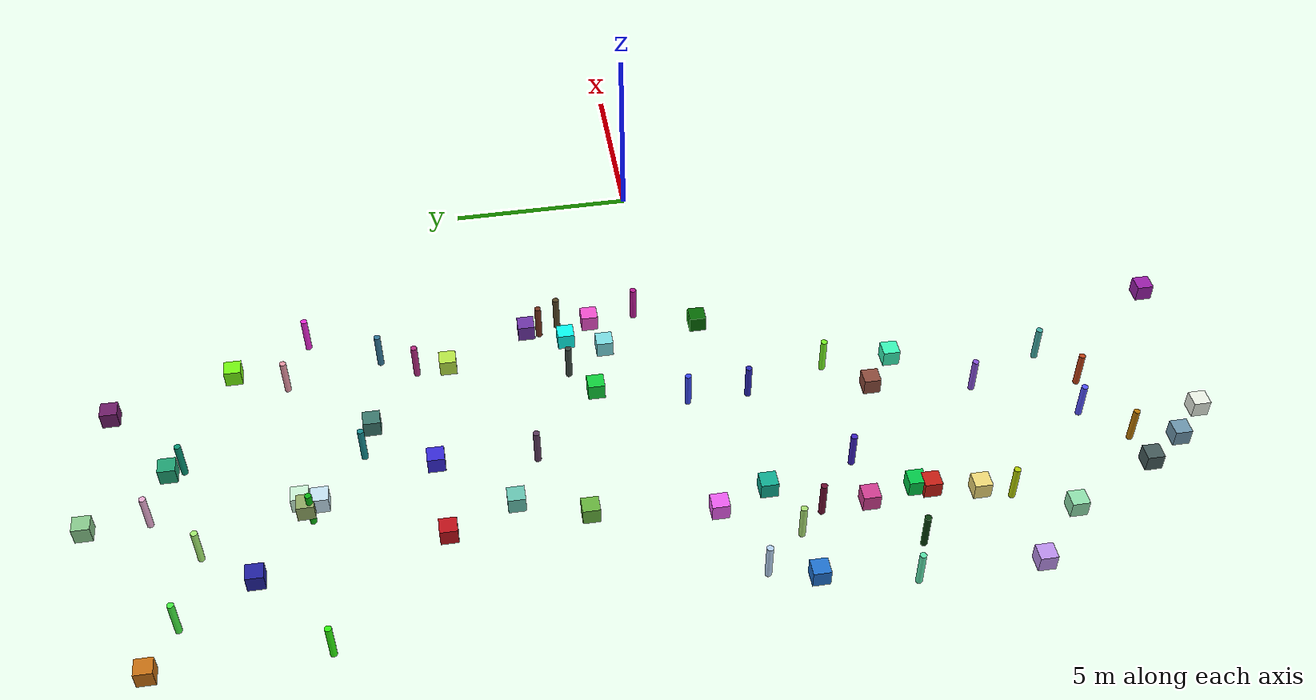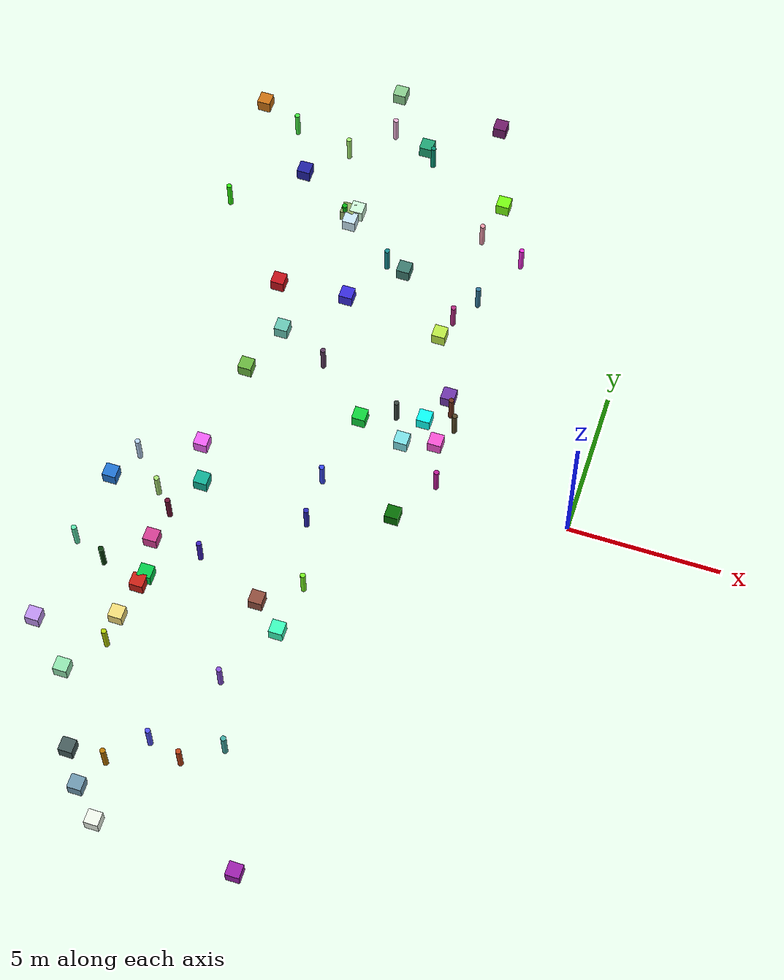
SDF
<sdf version="1.7">
 <world name="warehouse">
  <model name="ground_plane">
   <static>true</static>
   <link name="link">
    <collision name="collision">
     <geometry><plane><normal>0.0 0.0 1</normal><size>1 1</size></plane></geometry>
    </collision>
   </link>
  </model>
  <model name="unit_box_1">
   <static>true</static>
   <pose>-9.45 6.24 0 0 0 0</pose>
   <link name="link">
    <collision name="collision">
     <geometry><box><size>0.450000 0.450000 0.450000</size></box></geometry>
    </collision>
    <visual name="visual">
     <geometry><box><size>0.450000 0.450000 0.450000</size></box></geometry>
     <material>
      <ambient>0.22018970672033 0.168669181390797 0.8557216432038262 1</ambient>
      <diffuse>0.22018970672033 0.168669181390797 0.8557216432038262 1</diffuse>
      <script><uri>file://media/materials/scripts/gazebo.material</uri><name>Gazebo/RandomColor1</name></script>
     </material>
    </visual>
   </link>
  </model>
  <model name="unit_cylinder_1">
   <static>true</static>
   <pose>-4.3 9.48 0 0 0 0</pose>
   <link name="link">
    <collision name="collision">
     <geometry><cylinder><radius>0.085000</radius><length>1.000000</length></cylinder></geometry>
    </collision>
    <visual name="visual">
     <geometry><cylinder><radius>0.085000</radius><length>1.000000</length></cylinder></geometry>
     <material>
      <ambient>0.9275289806916635 0.16235170054518033 0.8495910540043754 1</ambient>
      <diffuse>0.9275289806916635 0.16235170054518033 0.8495910540043754 1</diffuse>
      <script><uri>file://media/materials/scripts/gazebo.material</uri><name>Gazebo/RandomColor1</name></script>
     </material>
    </visual>
   </link>
  </model>
  <model name="unit_box_2">
   <static>true</static>
   <pose>-7.58 -6.17 0 0 0 0</pose>
   <link name="link">
    <collision name="collision">
     <geometry><box><size>0.450000 0.450000 0.450000</size></box></geometry>
    </collision>
    <visual name="visual">
     <geometry><box><size>0.450000 0.450000 0.450000</size></box></geometry>
     <material>
      <ambient>0.2312825415340426 0.9723109525071806 0.7312117675803362 1</ambient>
      <diffuse>0.2312825415340426 0.9723109525071806 0.7312117675803362 1</diffuse>
      <script><uri>file://media/materials/scripts/gazebo.material</uri><name>Gazebo/RandomColor2</name></script>
     </material>
    </visual>
   </link>
  </model>
  <model name="unit_box_6">
   <static>true</static>
   <pose>-14.93 -8.04 0 0 0 0</pose>
   <link name="link">
    <collision name="collision">
     <geometry><box><size>0.450000 0.450000 0.450000</size></box></geometry>
    </collision>
    <visual name="visual">
     <geometry><box><size>0.450000 0.450000 0.450000</size></box></geometry>
     <material>
      <ambient>0.7430324248041168 0.5738740492089994 0.9353396482725254 1</ambient>
      <diffuse>0.7430324248041168 0.5738740492089994 0.9353396482725254 1</diffuse>
      <script><uri>file://media/materials/scripts/gazebo.material</uri><name>Gazebo/RandomColor6</name></script>
     </material>
    </visual>
   </link>
  </model>
  <model name="unit_box_8">
   <static>true</static>
   <pose>-11.6 -12.82 0 0 0 0</pose>
   <link name="link">
    <collision name="collision">
     <geometry><box><size>0.450000 0.450000 0.450000</size></box></geometry>
    </collision>
    <visual name="visual">
     <geometry><box><size>0.450000 0.450000 0.450000</size></box></geometry>
     <material>
      <ambient>0.43343318827009225 0.5937559258900776 0.6828403868105664 1</ambient>
      <diffuse>0.43343318827009225 0.5937559258900776 0.6828403868105664 1</diffuse>
      <script><uri>file://media/materials/scripts/gazebo.material</uri><name>Gazebo/RandomColor8</name></script>
     </material>
    </visual>
   </link>
  </model>
  <model name="unit_box_11">
   <static>true</static>
   <pose>-12.15 -5.6 0 0 0 0</pose>
   <link name="link">
    <collision name="collision">
     <geometry><box><size>0.450000 0.450000 0.450000</size></box></geometry>
    </collision>
    <visual name="visual">
     <geometry><box><size>0.450000 0.450000 0.450000</size></box></geometry>
     <material>
      <ambient>0.009686847005365151 0.7958886425692635 0.28912136334541993 1</ambient>
      <diffuse>0.009686847005365151 0.7958886425692635 0.28912136334541993 1</diffuse>
      <script><uri>file://media/materials/scripts/gazebo.material</uri><name>Gazebo/RandomColor11</name></script>
     </material>
    </visual>
   </link>
  </model>
  <model name="unit_cylinder_12">
   <static>true</static>
   <pose>-5.85 10.04 0 0 0 0</pose>
   <link name="link">
    <collision name="collision">
     <geometry><cylinder><radius>0.085000</radius><length>1.000000</length></cylinder></geometry>
    </collision>
    <visual name="visual">
     <geometry><cylinder><radius>0.085000</radius><length>1.000000</length></cylinder></geometry>
     <material>
      <ambient>0.9099793979901629 0.5892522467727745 0.6506620106365731 1</ambient>
      <diffuse>0.9099793979901629 0.5892522467727745 0.6506620106365731 1</diffuse>
      <script><uri>file://media/materials/scripts/gazebo.material</uri><name>Gazebo/RandomColor12</name></script>
     </material>
    </visual>
   </link>
  </model>
  <model name="unit_box_13">
   <static>true</static>
   <pose>-12.5 -7.19 0 0 0 0</pose>
   <link name="link">
    <collision name="collision">
     <geometry><box><size>0.450000 0.450000 0.450000</size></box></geometry>
    </collision>
    <visual name="visual">
     <geometry><box><size>0.450000 0.450000 0.450000</size></box></geometry>
     <material>
      <ambient>0.9443924591899964 0.8581053386519131 0.4730509594195955 1</ambient>
      <diffuse>0.9443924591899964 0.8581053386519131 0.4730509594195955 1</diffuse>
      <script><uri>file://media/materials/scripts/gazebo.material</uri><name>Gazebo/RandomColor13</name></script>
     </material>
    </visual>
   </link>
  </model>
  <model name="unit_cylinder_13">
   <static>true</static>
   <pose>-4.82 3.12 0 0 0 0</pose>
   <link name="link">
    <collision name="collision">
     <geometry><cylinder><radius>0.085000</radius><length>1.000000</length></cylinder></geometry>
    </collision>
    <visual name="visual">
     <geometry><cylinder><radius>0.085000</radius><length>1.000000</length></cylinder></geometry>
     <material>
      <ambient>0.44348084139480304 0.1950857366091988 0.1112470507666955 1</ambient>
      <diffuse>0.44348084139480304 0.1950857366091988 0.1112470507666955 1</diffuse>
      <script><uri>file://media/materials/scripts/gazebo.material</uri><name>Gazebo/RandomColor13</name></script>
     </material>
    </visual>
   </link>
  </model>
  <model name="unit_box_15">
   <static>true</static>
   <pose>-11.63 -1.93 0 0 0 0</pose>
   <link name="link">
    <collision name="collision">
     <geometry><box><size>0.450000 0.450000 0.450000</size></box></geometry>
    </collision>
    <visual name="visual">
     <geometry><box><size>0.450000 0.450000 0.450000</size></box></geometry>
     <material>
      <ambient>0.06534427168459656 0.6835050197864069 0.5798323271976961 1</ambient>
      <diffuse>0.06534427168459656 0.6835050197864069 0.5798323271976961 1</diffuse>
      <script><uri>file://media/materials/scripts/gazebo.material</uri><name>Gazebo/RandomColor15</name></script>
     </material>
    </visual>
   </link>
  </model>
  <model name="unit_cylinder_15">
   <static>true</static>
   <pose>-8.75 -8.18 0 0 0 0</pose>
   <link name="link">
    <collision name="collision">
     <geometry><cylinder><radius>0.085000</radius><length>1.000000</length></cylinder></geometry>
    </collision>
    <visual name="visual">
     <geometry><cylinder><radius>0.085000</radius><length>1.000000</length></cylinder></geometry>
     <material>
      <ambient>0.530437266507116 0.3187241931810576 0.8595011456076574 1</ambient>
      <diffuse>0.530437266507116 0.3187241931810576 0.8595011456076574 1</diffuse>
      <script><uri>file://media/materials/scripts/gazebo.material</uri><name>Gazebo/RandomColor15</name></script>
     </material>
    </visual>
   </link>
  </model>
  <model name="unit_box_16">
   <static>true</static>
   <pose>-11.82 6.08 0 0 0 0</pose>
   <link name="link">
    <collision name="collision">
     <geometry><box><size>0.450000 0.450000 0.450000</size></box></geometry>
    </collision>
    <visual name="visual">
     <geometry><box><size>0.450000 0.450000 0.450000</size></box></geometry>
     <material>
      <ambient>0.7576021204140397 0.06908343477428247 0.1029401630925113 1</ambient>
      <diffuse>0.7576021204140397 0.06908343477428247 0.1029401630925113 1</diffuse>
      <script><uri>file://media/materials/scripts/gazebo.material</uri><name>Gazebo/RandomColor16</name></script>
     </material>
    </visual>
   </link>
  </model>
  <model name="unit_box_17">
   <static>true</static>
   <pose>-10.33 14.91 0 0 0 0</pose>
   <link name="link">
    <collision name="collision">
     <geometry><box><size>0.450000 0.450000 0.450000</size></box></geometry>
    </collision>
    <visual name="visual">
     <geometry><box><size>0.450000 0.450000 0.450000</size></box></geometry>
     <material>
      <ambient>0.5380822836888527 0.7951779781985044 0.5547439271741642 1</ambient>
      <diffuse>0.5380822836888527 0.7951779781985044 0.5547439271741642 1</diffuse>
      <script><uri>file://media/materials/scripts/gazebo.material</uri><name>Gazebo/RandomColor17</name></script>
     </material>
    </visual>
   </link>
  </model>
  <model name="unit_box_22">
   <static>true</static>
   <pose>-11.73 2.57 0 0 0 0</pose>
   <link name="link">
    <collision name="collision">
     <geometry><box><size>0.450000 0.450000 0.450000</size></box></geometry>
    </collision>
    <visual name="visual">
     <geometry><box><size>0.450000 0.450000 0.450000</size></box></geometry>
     <material>
      <ambient>0.41077580032912864 0.7096107871756682 0.2456619725342214 1</ambient>
      <diffuse>0.41077580032912864 0.7096107871756682 0.2456619725342214 1</diffuse>
      <script><uri>file://media/materials/scripts/gazebo.material</uri><name>Gazebo/RandomColor22</name></script>
     </material>
    </visual>
   </link>
  </model>
  <model name="unit_cylinder_23">
   <static>true</static>
   <pose>-8.42 12.65 0 0 0 0</pose>
   <link name="link">
    <collision name="collision">
     <geometry><cylinder><radius>0.085000</radius><length>1.000000</length></cylinder></geometry>
    </collision>
    <visual name="visual">
     <geometry><cylinder><radius>0.085000</radius><length>1.000000</length></cylinder></geometry>
     <material>
      <ambient>0.023712384570412137 0.5786982690521715 0.4533886815752537 1</ambient>
      <diffuse>0.023712384570412137 0.5786982690521715 0.4533886815752537 1</diffuse>
      <script><uri>file://media/materials/scripts/gazebo.material</uri><name>Gazebo/RandomColor23</name></script>
     </material>
    </visual>
   </link>
  </model>
  <model name="unit_cylinder_26">
   <static>true</static>
   <pose>-6.5 2.48 0 0 0 0</pose>
   <link name="link">
    <collision name="collision">
     <geometry><cylinder><radius>0.085000</radius><length>1.000000</length></cylinder></geometry>
    </collision>
    <visual name="visual">
     <geometry><cylinder><radius>0.085000</radius><length>1.000000</length></cylinder></geometry>
     <material>
      <ambient>0.2324987072521133 0.27767684038715057 0.25354537623528006 1</ambient>
      <diffuse>0.2324987072521133 0.27767684038715057 0.25354537623528006 1</diffuse>
      <script><uri>file://media/materials/scripts/gazebo.material</uri><name>Gazebo/RandomColor26</name></script>
     </material>
    </visual>
   </link>
  </model>
  <model name="unit_box_27">
   <static>true</static>
   <pose>-4.91 1.72 0 0 0 0</pose>
   <link name="link">
    <collision name="collision">
     <geometry><box><size>0.450000 0.450000 0.450000</size></box></geometry>
    </collision>
    <visual name="visual">
     <geometry><box><size>0.450000 0.450000 0.450000</size></box></geometry>
     <material>
      <ambient>0.9500780299035041 0.3202009594664772 0.8172003858229484 1</ambient>
      <diffuse>0.9500780299035041 0.3202009594664772 0.8172003858229484 1</diffuse>
      <script><uri>file://media/materials/scripts/gazebo.material</uri><name>Gazebo/RandomColor27</name></script>
     </material>
    </visual>
   </link>
  </model>
  <model name="unit_cylinder_27">
   <static>true</static>
   <pose>-8.99 -11.06 0 0 0 0</pose>
   <link name="link">
    <collision name="collision">
     <geometry><cylinder><radius>0.085000</radius><length>1.000000</length></cylinder></geometry>
    </collision>
    <visual name="visual">
     <geometry><cylinder><radius>0.085000</radius><length>1.000000</length></cylinder></geometry>
     <material>
      <ambient>0.7366144922866806 0.25773160699544395 0.08786610210633872 1</ambient>
      <diffuse>0.7366144922866806 0.25773160699544395 0.08786610210633872 1</diffuse>
      <script><uri>file://media/materials/scripts/gazebo.material</uri><name>Gazebo/RandomColor27</name></script>
     </material>
    </visual>
   </link>
  </model>
  <model name="unit_box_28">
   <static>true</static>
   <pose>-10.71 -13.7 0 0 0 0</pose>
   <link name="link">
    <collision name="collision">
     <geometry><box><size>0.450000 0.450000 0.450000</size></box></geometry>
    </collision>
    <visual name="visual">
     <geometry><box><size>0.450000 0.450000 0.450000</size></box></geometry>
     <material>
      <ambient>0.9300580041193878 0.9546250954297362 0.910626091757256 1</ambient>
      <diffuse>0.9300580041193878 0.9546250954297362 0.910626091757256 1</diffuse>
      <script><uri>file://media/materials/scripts/gazebo.material</uri><name>Gazebo/RandomColor28</name></script>
     </material>
    </visual>
   </link>
  </model>
  <model name="unit_box_30">
   <static>true</static>
   <pose>-6.02 5.71 0 0 0 0</pose>
   <link name="link">
    <collision name="collision">
     <geometry><box><size>0.450000 0.450000 0.450000</size></box></geometry>
    </collision>
    <visual name="visual">
     <geometry><box><size>0.450000 0.450000 0.450000</size></box></geometry>
     <material>
      <ambient>0.7271689009559735 0.9087428725407991 0.273622600146868 1</ambient>
      <diffuse>0.7271689009559735 0.9087428725407991 0.273622600146868 1</diffuse>
      <script><uri>file://media/materials/scripts/gazebo.material</uri><name>Gazebo/RandomColor30</name></script>
     </material>
    </visual>
   </link>
  </model>
  <model name="unit_cylinder_33">
   <static>true</static>
   <pose>-5.82 6.57 0 0 0 0</pose>
   <link name="link">
    <collision name="collision">
     <geometry><cylinder><radius>0.085000</radius><length>1.000000</length></cylinder></geometry>
    </collision>
    <visual name="visual">
     <geometry><cylinder><radius>0.085000</radius><length>1.000000</length></cylinder></geometry>
     <material>
      <ambient>0.7002240023368198 0.1709598156662433 0.5054125950649161 1</ambient>
      <diffuse>0.7002240023368198 0.1709598156662433 0.5054125950649161 1</diffuse>
      <script><uri>file://media/materials/scripts/gazebo.material</uri><name>Gazebo/RandomColor33</name></script>
     </material>
    </visual>
   </link>
  </model>
  <model name="unit_cylinder_34">
   <static>true</static>
   <pose>-13.69 -5.43 0 0 0 0</pose>
   <link name="link">
    <collision name="collision">
     <geometry><cylinder><radius>0.085000</radius><length>1.000000</length></cylinder></geometry>
    </collision>
    <visual name="visual">
     <geometry><cylinder><radius>0.085000</radius><length>1.000000</length></cylinder></geometry>
     <material>
      <ambient>0.03460307237287197 0.22997860080729615 0.04798962728053702 1</ambient>
      <diffuse>0.03460307237287197 0.22997860080729615 0.04798962728053702 1</diffuse>
      <script><uri>file://media/materials/scripts/gazebo.material</uri><name>Gazebo/RandomColor34</name></script>
     </material>
    </visual>
   </link>
  </model>
  <model name="unit_box_37">
   <static>true</static>
   <pose>-12.27 -5.97 0 0 0 0</pose>
   <link name="link">
    <collision name="collision">
     <geometry><box><size>0.450000 0.450000 0.450000</size></box></geometry>
    </collision>
    <visual name="visual">
     <geometry><box><size>0.450000 0.450000 0.450000</size></box></geometry>
     <material>
      <ambient>0.785275752381816 0.11966972178466306 0.08052642020018763 1</ambient>
      <diffuse>0.785275752381816 0.11966972178466306 0.08052642020018763 1</diffuse>
      <script><uri>file://media/materials/scripts/gazebo.material</uri><name>Gazebo/RandomColor37</name></script>
     </material>
    </visual>
   </link>
  </model>
  <model name="unit_box_38">
   <static>true</static>
   <pose>-8.53 -5.39 0 0 0 0</pose>
   <link name="link">
    <collision name="collision">
     <geometry><box><size>0.450000 0.450000 0.450000</size></box></geometry>
    </collision>
    <visual name="visual">
     <geometry><box><size>0.450000 0.450000 0.450000</size></box></geometry>
     <material>
      <ambient>0.5569207485153423 0.30029585199864495 0.2389658233827705 1</ambient>
      <diffuse>0.5569207485153423 0.30029585199864495 0.2389658233827705 1</diffuse>
      <script><uri>file://media/materials/scripts/gazebo.material</uri><name>Gazebo/RandomColor38</name></script>
     </material>
    </visual>
   </link>
  </model>
  <model name="unit_cylinder_39">
   <static>true</static>
   <pose>-13.39 12.55 0 0 0 0</pose>
   <link name="link">
    <collision name="collision">
     <geometry><cylinder><radius>0.085000</radius><length>1.000000</length></cylinder></geometry>
    </collision>
    <visual name="visual">
     <geometry><cylinder><radius>0.085000</radius><length>1.000000</length></cylinder></geometry>
     <material>
      <ambient>0.2705374245741271 0.9323313676135621 0.2629007389846195 1</ambient>
      <diffuse>0.2705374245741271 0.9323313676135621 0.2629007389846195 1</diffuse>
      <script><uri>file://media/materials/scripts/gazebo.material</uri><name>Gazebo/RandomColor39</name></script>
     </material>
    </visual>
   </link>
  </model>
  <model name="unit_box_41">
   <static>true</static>
   <pose>-7.93 7.81 0 0 0 0</pose>
   <link name="link">
    <collision name="collision">
     <geometry><box><size>0.450000 0.450000 0.450000</size></box></geometry>
    </collision>
    <visual name="visual">
     <geometry><box><size>0.450000 0.450000 0.450000</size></box></geometry>
     <material>
      <ambient>0.23830099891669687 0.4794075089015353 0.4347698297926408 1</ambient>
      <diffuse>0.23830099891669687 0.4794075089015353 0.4347698297926408 1</diffuse>
      <script><uri>file://media/materials/scripts/gazebo.material</uri><name>Gazebo/RandomColor41</name></script>
     </material>
    </visual>
   </link>
  </model>
  <model name="unit_box_43">
   <static>true</static>
   <pose>-10.5 9.52 0 0 0 0</pose>
   <link name="link">
    <collision name="collision">
     <geometry><box><size>0.450000 0.450000 0.450000</size></box></geometry>
    </collision>
    <visual name="visual">
     <geometry><box><size>0.450000 0.450000 0.450000</size></box></geometry>
     <material>
      <ambient>0.5753375620818686 0.6690438729759723 0.39958083581730774 1</ambient>
      <diffuse>0.5753375620818686 0.6690438729759723 0.39958083581730774 1</diffuse>
      <script><uri>file://media/materials/scripts/gazebo.material</uri><name>Gazebo/RandomColor43</name></script>
     </material>
    </visual>
   </link>
  </model>
  <model name="unit_box_45">
   <static>true</static>
   <pose>-13.45 -9.38 0 0 0 0</pose>
   <link name="link">
    <collision name="collision">
     <geometry><box><size>0.450000 0.450000 0.450000</size></box></geometry>
    </collision>
    <visual name="visual">
     <geometry><box><size>0.450000 0.450000 0.450000</size></box></geometry>
     <material>
      <ambient>0.5682587827166725 0.887023495897557 0.6833977487729155 1</ambient>
      <diffuse>0.5682587827166725 0.887023495897557 0.6833977487729155 1</diffuse>
      <script><uri>file://media/materials/scripts/gazebo.material</uri><name>Gazebo/RandomColor45</name></script>
     </material>
    </visual>
   </link>
  </model>
  <model name="unit_cylinder_45">
   <static>true</static>
   <pose>-12.31 -3.18 0 0 0 0</pose>
   <link name="link">
    <collision name="collision">
     <geometry><cylinder><radius>0.085000</radius><length>1.000000</length></cylinder></geometry>
    </collision>
    <visual name="visual">
     <geometry><cylinder><radius>0.085000</radius><length>1.000000</length></cylinder></geometry>
     <material>
      <ambient>0.4305680643748917 0.062214742778121224 0.19989253353419567 1</ambient>
      <diffuse>0.4305680643748917 0.062214742778121224 0.19989253353419567 1</diffuse>
      <script><uri>file://media/materials/scripts/gazebo.material</uri><name>Gazebo/RandomColor45</name></script>
     </material>
    </visual>
   </link>
  </model>
  <model name="unit_cylinder_47">
   <static>true</static>
   <pose>-12.56 -8.06 0 0 0 0</pose>
   <link name="link">
    <collision name="collision">
     <geometry><cylinder><radius>0.085000</radius><length>1.000000</length></cylinder></geometry>
    </collision>
    <visual name="visual">
     <geometry><cylinder><radius>0.085000</radius><length>1.000000</length></cylinder></geometry>
     <material>
      <ambient>0.6987950884299728 0.8023372630141874 0.015265671924172608 1</ambient>
      <diffuse>0.6987950884299728 0.8023372630141874 0.015265671924172608 1</diffuse>
      <script><uri>file://media/materials/scripts/gazebo.material</uri><name>Gazebo/RandomColor47</name></script>
     </material>
    </visual>
   </link>
  </model>
  <model name="unit_box_51">
   <static>true</static>
   <pose>-14.5 -2.58 0 0 0 0</pose>
   <link name="link">
    <collision name="collision">
     <geometry><box><size>0.450000 0.450000 0.450000</size></box></geometry>
    </collision>
    <visual name="visual">
     <geometry><box><size>0.450000 0.450000 0.450000</size></box></geometry>
     <material>
      <ambient>0.1290862519699416 0.45229003769965004 0.8227772905402935 1</ambient>
      <diffuse>0.1290862519699416 0.45229003769965004 0.8227772905402935 1</diffuse>
      <script><uri>file://media/materials/scripts/gazebo.material</uri><name>Gazebo/RandomColor51</name></script>
     </material>
    </visual>
   </link>
  </model>
  <model name="unit_box_52">
   <static>true</static>
   <pose>-5.98 1.44 0 0 0 0</pose>
   <link name="link">
    <collision name="collision">
     <geometry><box><size>0.450000 0.450000 0.450000</size></box></geometry>
    </collision>
    <visual name="visual">
     <geometry><box><size>0.450000 0.450000 0.450000</size></box></geometry>
     <material>
      <ambient>0.48457229968074744 0.8731085697306902 0.8966006427197286 1</ambient>
      <diffuse>0.48457229968074744 0.8731085697306902 0.8966006427197286 1</diffuse>
      <script><uri>file://media/materials/scripts/gazebo.material</uri><name>Gazebo/RandomColor52</name></script>
     </material>
    </visual>
   </link>
  </model>
  <model name="unit_cylinder_52">
   <static>true</static>
   <pose>-8.63 8.07 0 0 0 0</pose>
   <link name="link">
    <collision name="collision">
     <geometry><cylinder><radius>0.085000</radius><length>1.000000</length></cylinder></geometry>
    </collision>
    <visual name="visual">
     <geometry><cylinder><radius>0.085000</radius><length>1.000000</length></cylinder></geometry>
     <material>
      <ambient>0.08608254672888882 0.5446359922606209 0.5608032077888634 1</ambient>
      <diffuse>0.08608254672888882 0.5446359922606209 0.5608032077888634 1</diffuse>
      <script><uri>file://media/materials/scripts/gazebo.material</uri><name>Gazebo/RandomColor52</name></script>
     </material>
    </visual>
   </link>
  </model>
  <model name="unit_cylinder_53">
   <static>true</static>
   <pose>-7.36 -4.37 0 0 0 0</pose>
   <link name="link">
    <collision name="collision">
     <geometry><cylinder><radius>0.085000</radius><length>1.000000</length></cylinder></geometry>
    </collision>
    <visual name="visual">
     <geometry><cylinder><radius>0.085000</radius><length>1.000000</length></cylinder></geometry>
     <material>
      <ambient>0.46528878501856963 0.9600302573362931 0.13673981407738656 1</ambient>
      <diffuse>0.46528878501856963 0.9600302573362931 0.13673981407738656 1</diffuse>
      <script><uri>file://media/materials/scripts/gazebo.material</uri><name>Gazebo/RandomColor53</name></script>
     </material>
    </visual>
   </link>
  </model>
  <model name="unit_box_54">
   <static>true</static>
   <pose>-10.32 9.17 0 0 0 0</pose>
   <link name="link">
    <collision name="collision">
     <geometry><box><size>0.450000 0.450000 0.450000</size></box></geometry>
    </collision>
    <visual name="visual">
     <geometry><box><size>0.450000 0.450000 0.450000</size></box></geometry>
     <material>
      <ambient>0.7799524402636259 0.8944403859260049 0.954462719513312 1</ambient>
      <diffuse>0.7799524402636259 0.8944403859260049 0.954462719513312 1</diffuse>
      <script><uri>file://media/materials/scripts/gazebo.material</uri><name>Gazebo/RandomColor54</name></script>
     </material>
    </visual>
   </link>
  </model>
  <model name="unit_cylinder_56">
   <static>true</static>
   <pose>-8.04 -0.53 0 0 0 0</pose>
   <link name="link">
    <collision name="collision">
     <geometry><cylinder><radius>0.085000</radius><length>1.000000</length></cylinder></geometry>
    </collision>
    <visual name="visual">
     <geometry><cylinder><radius>0.085000</radius><length>1.000000</length></cylinder></geometry>
     <material>
      <ambient>0.21744554015486672 0.28165685887224234 0.9281563132910903 1</ambient>
      <diffuse>0.21744554015486672 0.28165685887224234 0.9281563132910903 1</diffuse>
      <script><uri>file://media/materials/scripts/gazebo.material</uri><name>Gazebo/RandomColor56</name></script>
     </material>
    </visual>
   </link>
  </model>
  <model name="unit_cylinder_60">
   <static>true</static>
   <pose>-12.93 -2.53 0 0 0 0</pose>
   <link name="link">
    <collision name="collision">
     <geometry><cylinder><radius>0.085000</radius><length>1.000000</length></cylinder></geometry>
    </collision>
    <visual name="visual">
     <geometry><cylinder><radius>0.085000</radius><length>1.000000</length></cylinder></geometry>
     <material>
      <ambient>0.6545969154987289 0.8697731395731353 0.444686547019678 1</ambient>
      <diffuse>0.6545969154987289 0.8697731395731353 0.444686547019678 1</diffuse>
      <script><uri>file://media/materials/scripts/gazebo.material</uri><name>Gazebo/RandomColor60</name></script>
     </material>
    </visual>
   </link>
  </model>
  <model name="unit_cylinder_63">
   <static>true</static>
   <pose>-10.83 -4.32 0 0 0 0</pose>
   <link name="link">
    <collision name="collision">
     <geometry><cylinder><radius>0.085000</radius><length>1.000000</length></cylinder></geometry>
    </collision>
    <visual name="visual">
     <geometry><cylinder><radius>0.085000</radius><length>1.000000</length></cylinder></geometry>
     <material>
      <ambient>0.23664041386412027 0.1287417953459028 0.7472711080185126 1</ambient>
      <diffuse>0.23664041386412027 0.1287417953459028 0.7472711080185126 1</diffuse>
      <script><uri>file://media/materials/scripts/gazebo.material</uri><name>Gazebo/RandomColor63</name></script>
     </material>
    </visual>
   </link>
  </model>
  <model name="unit_box_64">
   <static>true</static>
   <pose>-14.79 13.13 0 0 0 0</pose>
   <link name="link">
    <collision name="collision">
     <geometry><box><size>0.450000 0.450000 0.450000</size></box></geometry>
    </collision>
    <visual name="visual">
     <geometry><box><size>0.450000 0.450000 0.450000</size></box></geometry>
     <material>
      <ambient>0.7911399282647297 0.44439424376038517 0.07853067311853557 1</ambient>
      <diffuse>0.7911399282647297 0.44439424376038517 0.07853067311853557 1</diffuse>
      <script><uri>file://media/materials/scripts/gazebo.material</uri><name>Gazebo/RandomColor64</name></script>
     </material>
    </visual>
   </link>
  </model>
  <model name="unit_box_66">
   <static>true</static>
   <pose>-5.42 -1.23 0 0 0 0</pose>
   <link name="link">
    <collision name="collision">
     <geometry><box><size>0.450000 0.450000 0.450000</size></box></geometry>
    </collision>
    <visual name="visual">
     <geometry><box><size>0.450000 0.450000 0.450000</size></box></geometry>
     <material>
      <ambient>0.024779146247511874 0.4237865882249068 0.0186775882637904 1</ambient>
      <diffuse>0.024779146247511874 0.4237865882249068 0.0186775882637904 1</diffuse>
      <script><uri>file://media/materials/scripts/gazebo.material</uri><name>Gazebo/RandomColor66</name></script>
     </material>
    </visual>
   </link>
  </model>
  <model name="unit_box_68">
   <static>true</static>
   <pose>-10.21 9.66 0 0 0 0</pose>
   <link name="link">
    <collision name="collision">
     <geometry><box><size>0.450000 0.450000 0.450000</size></box></geometry>
    </collision>
    <visual name="visual">
     <geometry><box><size>0.450000 0.450000 0.450000</size></box></geometry>
     <material>
      <ambient>0.8058819777795072 0.9655362042817051 0.8497715888361412 1</ambient>
      <diffuse>0.8058819777795072 0.9655362042817051 0.8497715888361412 1</diffuse>
      <script><uri>file://media/materials/scripts/gazebo.material</uri><name>Gazebo/RandomColor68</name></script>
     </material>
    </visual>
   </link>
  </model>
  <model name="unit_cylinder_68">
   <static>true</static>
   <pose>-11.15 -11.74 0 0 0 0</pose>
   <link name="link">
    <collision name="collision">
     <geometry><cylinder><radius>0.085000</radius><length>1.000000</length></cylinder></geometry>
    </collision>
    <visual name="visual">
     <geometry><cylinder><radius>0.085000</radius><length>1.000000</length></cylinder></geometry>
     <material>
      <ambient>0.7252318153248981 0.46390208048648174 0.014467574343568823 1</ambient>
      <diffuse>0.7252318153248981 0.46390208048648174 0.014467574343568823 1</diffuse>
      <script><uri>file://media/materials/scripts/gazebo.material</uri><name>Gazebo/RandomColor68</name></script>
     </material>
    </visual>
   </link>
  </model>
  <model name="unit_box_70">
   <static>true</static>
   <pose>-12.43 -4.35 0 0 0 0</pose>
   <link name="link">
    <collision name="collision">
     <geometry><box><size>0.450000 0.450000 0.450000</size></box></geometry>
    </collision>
    <visual name="visual">
     <geometry><box><size>0.450000 0.450000 0.450000</size></box></geometry>
     <material>
      <ambient>0.8222804350118196 0.24171150803116392 0.5719215838556814 1</ambient>
      <diffuse>0.8222804350118196 0.24171150803116392 0.5719215838556814 1</diffuse>
      <script><uri>file://media/materials/scripts/gazebo.material</uri><name>Gazebo/RandomColor70</name></script>
     </material>
    </visual>
   </link>
  </model>
  <model name="unit_cylinder_71">
   <static>true</static>
   <pose>-9.42 3.65 0 0 0 0</pose>
   <link name="link">
    <collision name="collision">
     <geometry><cylinder><radius>0.085000</radius><length>1.000000</length></cylinder></geometry>
    </collision>
    <visual name="visual">
     <geometry><cylinder><radius>0.085000</radius><length>1.000000</length></cylinder></geometry>
     <material>
      <ambient>0.3631521271099719 0.2276065324650961 0.36792475765638033 1</ambient>
      <diffuse>0.3631521271099719 0.2276065324650961 0.36792475765638033 1</diffuse>
      <script><uri>file://media/materials/scripts/gazebo.material</uri><name>Gazebo/RandomColor71</name></script>
     </material>
    </visual>
   </link>
  </model>
  <model name="unit_cylinder_72">
   <static>true</static>
   <pose>-7.85 -10.26 0 0 0 0</pose>
   <link name="link">
    <collision name="collision">
     <geometry><cylinder><radius>0.085000</radius><length>1.000000</length></cylinder></geometry>
    </collision>
    <visual name="visual">
     <geometry><cylinder><radius>0.085000</radius><length>1.000000</length></cylinder></geometry>
     <material>
      <ambient>0.2602652903917432 0.6740453795501319 0.6447121037521534 1</ambient>
      <diffuse>0.2602652903917432 0.6740453795501319 0.6447121037521534 1</diffuse>
      <script><uri>file://media/materials/scripts/gazebo.material</uri><name>Gazebo/RandomColor72</name></script>
     </material>
    </visual>
   </link>
  </model>
  <model name="unit_box_73">
   <static>true</static>
   <pose>-6.19 -13.93 0 0 0 0</pose>
   <link name="link">
    <collision name="collision">
     <geometry><box><size>0.450000 0.450000 0.450000</size></box></geometry>
    </collision>
    <visual name="visual">
     <geometry><box><size>0.450000 0.450000 0.450000</size></box></geometry>
     <material>
      <ambient>0.6096582299573485 0.12380438544926886 0.669664054138782 1</ambient>
      <diffuse>0.6096582299573485 0.12380438544926886 0.669664054138782 1</diffuse>
      <script><uri>file://media/materials/scripts/gazebo.material</uri><name>Gazebo/RandomColor73</name></script>
     </material>
    </visual>
   </link>
  </model>
  <model name="unit_cylinder_73">
   <static>true</static>
   <pose>-4.55 2.59 0 0 0 0</pose>
   <link name="link">
    <collision name="collision">
     <geometry><cylinder><radius>0.085000</radius><length>1.000000</length></cylinder></geometry>
    </collision>
    <visual name="visual">
     <geometry><cylinder><radius>0.085000</radius><length>1.000000</length></cylinder></geometry>
     <material>
      <ambient>0.33862075541774284 0.2741001980069563 0.1554454247258774 1</ambient>
      <diffuse>0.33862075541774284 0.2741001980069563 0.1554454247258774 1</diffuse>
      <script><uri>file://media/materials/scripts/gazebo.material</uri><name>Gazebo/RandomColor73</name></script>
     </material>
    </visual>
   </link>
  </model>
  <model name="unit_cylinder_74">
   <static>true</static>
   <pose>-13.99 -1.45 0 0 0 0</pose>
   <link name="link">
    <collision name="collision">
     <geometry><cylinder><radius>0.085000</radius><length>1.000000</length></cylinder></geometry>
    </collision>
    <visual name="visual">
     <geometry><cylinder><radius>0.085000</radius><length>1.000000</length></cylinder></geometry>
     <material>
      <ambient>0.7080659203535737 0.8198010347140043 0.9484041967642637 1</ambient>
      <diffuse>0.7080659203535737 0.8198010347140043 0.9484041967642637 1</diffuse>
      <script><uri>file://media/materials/scripts/gazebo.material</uri><name>Gazebo/RandomColor74</name></script>
     </material>
    </visual>
   </link>
  </model>
  <model name="unit_box_75">
   <static>true</static>
   <pose>-12.3 -11.79 0 0 0 0</pose>
   <link name="link">
    <collision name="collision">
     <geometry><box><size>0.450000 0.450000 0.450000</size></box></geometry>
    </collision>
    <visual name="visual">
     <geometry><box><size>0.450000 0.450000 0.450000</size></box></geometry>
     <material>
      <ambient>0.2720220185902915 0.3579770327963455 0.3596246873137794 1</ambient>
      <diffuse>0.2720220185902915 0.3579770327963455 0.3596246873137794 1</diffuse>
      <script><uri>file://media/materials/scripts/gazebo.material</uri><name>Gazebo/RandomColor75</name></script>
     </material>
    </visual>
   </link>
  </model>
  <model name="unit_box_77">
   <static>true</static>
   <pose>-12.48 10.71 0 0 0 0</pose>
   <link name="link">
    <collision name="collision">
     <geometry><box><size>0.450000 0.450000 0.450000</size></box></geometry>
    </collision>
    <visual name="visual">
     <geometry><box><size>0.450000 0.450000 0.450000</size></box></geometry>
     <material>
      <ambient>0.13185575913857217 0.13178433741227125 0.6359963660296012 1</ambient>
      <diffuse>0.13185575913857217 0.13178433741227125 0.6359963660296012 1</diffuse>
      <script><uri>file://media/materials/scripts/gazebo.material</uri><name>Gazebo/RandomColor77</name></script>
     </material>
    </visual>
   </link>
  </model>
  <model name="unit_box_79">
   <static>true</static>
   <pose>-5.49 11.42 0 0 0 0</pose>
   <link name="link">
    <collision name="collision">
     <geometry><box><size>0.450000 0.450000 0.450000</size></box></geometry>
    </collision>
    <visual name="visual">
     <geometry><box><size>0.450000 0.450000 0.450000</size></box></geometry>
     <material>
      <ambient>0.4643207422675666 0.9721543602950036 0.06746296356034909 1</ambient>
      <diffuse>0.4643207422675666 0.9721543602950036 0.06746296356034909 1</diffuse>
      <script><uri>file://media/materials/scripts/gazebo.material</uri><name>Gazebo/RandomColor79</name></script>
     </material>
    </visual>
   </link>
  </model>
  <model name="unit_box_80">
   <static>true</static>
   <pose>-12.12 -0.6 0 0 0 0</pose>
   <link name="link">
    <collision name="collision">
     <geometry><box><size>0.450000 0.450000 0.450000</size></box></geometry>
    </collision>
    <visual name="visual">
     <geometry><box><size>0.450000 0.450000 0.450000</size></box></geometry>
     <material>
      <ambient>0.9304342518990736 0.3722806377775062 0.9466100074455982 1</ambient>
      <diffuse>0.9304342518990736 0.3722806377775062 0.9466100074455982 1</diffuse>
      <script><uri>file://media/materials/scripts/gazebo.material</uri><name>Gazebo/RandomColor80</name></script>
     </material>
    </visual>
   </link>
  </model>
  <model name="unit_cylinder_80">
   <static>true</static>
   <pose>-4.49 0.41 0 0 0 0</pose>
   <link name="link">
    <collision name="collision">
     <geometry><cylinder><radius>0.085000</radius><length>1.000000</length></cylinder></geometry>
    </collision>
    <visual name="visual">
     <geometry><cylinder><radius>0.085000</radius><length>1.000000</length></cylinder></geometry>
     <material>
      <ambient>0.7405962270306848 0.10490845890156608 0.5940566538820943 1</ambient>
      <diffuse>0.7405962270306848 0.10490845890156608 0.5940566538820943 1</diffuse>
      <script><uri>file://media/materials/scripts/gazebo.material</uri><name>Gazebo/RandomColor80</name></script>
     </material>
    </visual>
   </link>
  </model>
  <model name="unit_cylinder_82">
   <static>true</static>
   <pose>-14.78 -4.99 0 0 0 0</pose>
   <link name="link">
    <collision name="collision">
     <geometry><cylinder><radius>0.085000</radius><length>1.000000</length></cylinder></geometry>
    </collision>
    <visual name="visual">
     <geometry><cylinder><radius>0.085000</radius><length>1.000000</length></cylinder></geometry>
     <material>
      <ambient>0.36004314638910484 0.8934043706811924 0.6800806175867581 1</ambient>
      <diffuse>0.36004314638910484 0.8934043706811924 0.6800806175867581 1</diffuse>
      <script><uri>file://media/materials/scripts/gazebo.material</uri><name>Gazebo/RandomColor82</name></script>
     </material>
    </visual>
   </link>
  </model>
  <model name="unit_box_83">
   <static>true</static>
   <pose>-8.74 12.96 0 0 0 0</pose>
   <link name="link">
    <collision name="collision">
     <geometry><box><size>0.450000 0.450000 0.450000</size></box></geometry>
    </collision>
    <visual name="visual">
     <geometry><box><size>0.450000 0.450000 0.450000</size></box></geometry>
     <material>
      <ambient>0.12454105306283669 0.6388926321831986 0.45453679119972756 1</ambient>
      <diffuse>0.12454105306283669 0.6388926321831986 0.45453679119972756 1</diffuse>
      <script><uri>file://media/materials/scripts/gazebo.material</uri><name>Gazebo/RandomColor83</name></script>
     </material>
    </visual>
   </link>
  </model>
  <model name="unit_box_84">
   <static>true</static>
   <pose>-11.09 4.35 0 0 0 0</pose>
   <link name="link">
    <collision name="collision">
     <geometry><box><size>0.450000 0.450000 0.450000</size></box></geometry>
    </collision>
    <visual name="visual">
     <geometry><box><size>0.450000 0.450000 0.450000</size></box></geometry>
     <material>
      <ambient>0.4087480147454823 0.7741420796844349 0.7001810554154277 1</ambient>
      <diffuse>0.4087480147454823 0.7741420796844349 0.7001810554154277 1</diffuse>
      <script><uri>file://media/materials/scripts/gazebo.material</uri><name>Gazebo/RandomColor84</name></script>
     </material>
    </visual>
   </link>
  </model>
  <model name="unit_box_85">
   <static>true</static>
   <pose>-7.55 1.88 0 0 0 0</pose>
   <link name="link">
    <collision name="collision">
     <geometry><box><size>0.450000 0.450000 0.450000</size></box></geometry>
    </collision>
    <visual name="visual">
     <geometry><box><size>0.450000 0.450000 0.450000</size></box></geometry>
     <material>
      <ambient>0.06567374241227841 0.820912461100574 0.2385109871120773 1</ambient>
      <diffuse>0.06567374241227841 0.820912461100574 0.2385109871120773 1</diffuse>
      <script><uri>file://media/materials/scripts/gazebo.material</uri><name>Gazebo/RandomColor85</name></script>
     </material>
    </visual>
   </link>
  </model>
  <model name="unit_cylinder_85">
   <static>true</static>
   <pose>-10.1 -10.72 0 0 0 0</pose>
   <link name="link">
    <collision name="collision">
     <geometry><cylinder><radius>0.085000</radius><length>1.000000</length></cylinder></geometry>
    </collision>
    <visual name="visual">
     <geometry><cylinder><radius>0.085000</radius><length>1.000000</length></cylinder></geometry>
     <material>
      <ambient>0.3281711470300578 0.3243154622101747 0.9793012705578749 1</ambient>
      <diffuse>0.3281711470300578 0.3243154622101747 0.9793012705578749 1</diffuse>
      <script><uri>file://media/materials/scripts/gazebo.material</uri><name>Gazebo/RandomColor85</name></script>
     </material>
    </visual>
   </link>
  </model>
  <model name="unit_cylinder_86">
   <static>true</static>
   <pose>-10.04 13.41 0 0 0 0</pose>
   <link name="link">
    <collision name="collision">
     <geometry><cylinder><radius>0.085000</radius><length>1.000000</length></cylinder></geometry>
    </collision>
    <visual name="visual">
     <geometry><cylinder><radius>0.085000</radius><length>1.000000</length></cylinder></geometry>
     <material>
      <ambient>0.917945747045229 0.6768811973305494 0.8284984471140023 1</ambient>
      <diffuse>0.917945747045229 0.6768811973305494 0.8284984471140023 1</diffuse>
      <script><uri>file://media/materials/scripts/gazebo.material</uri><name>Gazebo/RandomColor86</name></script>
     </material>
    </visual>
   </link>
  </model>
  <model name="unit_box_89">
   <static>true</static>
   <pose>-6.53 14.56 0 0 0 0</pose>
   <link name="link">
    <collision name="collision">
     <geometry><box><size>0.450000 0.450000 0.450000</size></box></geometry>
    </collision>
    <visual name="visual">
     <geometry><box><size>0.450000 0.450000 0.450000</size></box></geometry>
     <material>
      <ambient>0.4368396418593752 0.11355250515321591 0.41128991696174544 1</ambient>
      <diffuse>0.4368396418593752 0.11355250515321591 0.41128991696174544 1</diffuse>
      <script><uri>file://media/materials/scripts/gazebo.material</uri><name>Gazebo/RandomColor89</name></script>
     </material>
    </visual>
   </link>
  </model>
  <model name="unit_cylinder_90">
   <static>true</static>
   <pose>-5.24 7.53 0 0 0 0</pose>
   <link name="link">
    <collision name="collision">
     <geometry><cylinder><radius>0.085000</radius><length>1.000000</length></cylinder></geometry>
    </collision>
    <visual name="visual">
     <geometry><cylinder><radius>0.085000</radius><length>1.000000</length></cylinder></geometry>
     <material>
      <ambient>0.197660194307812 0.47038242185710966 0.6029190569428814 1</ambient>
      <diffuse>0.197660194307812 0.47038242185710966 0.6029190569428814 1</diffuse>
      <script><uri>file://media/materials/scripts/gazebo.material</uri><name>Gazebo/RandomColor90</name></script>
     </material>
    </visual>
   </link>
  </model>
  <model name="unit_cylinder_91">
   <static>true</static>
   <pose>-8.01 -2.17 0 0 0 0</pose>
   <link name="link">
    <collision name="collision">
     <geometry><cylinder><radius>0.085000</radius><length>1.000000</length></cylinder></geometry>
    </collision>
    <visual name="visual">
     <geometry><cylinder><radius>0.085000</radius><length>1.000000</length></cylinder></geometry>
     <material>
      <ambient>0.17015436546410745 0.16012024655171786 0.7156221681022616 1</ambient>
      <diffuse>0.17015436546410745 0.16012024655171786 0.7156221681022616 1</diffuse>
      <script><uri>file://media/materials/scripts/gazebo.material</uri><name>Gazebo/RandomColor91</name></script>
     </material>
    </visual>
   </link>
  </model>
  <model name="unit_cylinder_96">
   <static>true</static>
   <pose>-14.63 8.97 0 0 0 0</pose>
   <link name="link">
    <collision name="collision">
     <geometry><cylinder><radius>0.085000</radius><length>1.000000</length></cylinder></geometry>
    </collision>
    <visual name="visual">
     <geometry><cylinder><radius>0.085000</radius><length>1.000000</length></cylinder></geometry>
     <material>
      <ambient>0.18500673887339247 0.9513062666229023 0.06225720526757561 1</ambient>
      <diffuse>0.18500673887339247 0.9513062666229023 0.06225720526757561 1</diffuse>
      <script><uri>file://media/materials/scripts/gazebo.material</uri><name>Gazebo/RandomColor96</name></script>
     </material>
    </visual>
   </link>
  </model>
  <model name="unit_box_97">
   <static>true</static>
   <pose>-5.52 2.45 0 0 0 0</pose>
   <link name="link">
    <collision name="collision">
     <geometry><box><size>0.450000 0.450000 0.450000</size></box></geometry>
    </collision>
    <visual name="visual">
     <geometry><box><size>0.450000 0.450000 0.450000</size></box></geometry>
     <material>
      <ambient>0.042400310538982966 0.9970414046902839 0.9486208705877721 1</ambient>
      <diffuse>0.042400310538982966 0.9970414046902839 0.9486208705877721 1</diffuse>
      <script><uri>file://media/materials/scripts/gazebo.material</uri><name>Gazebo/RandomColor97</name></script>
     </material>
    </visual>
   </link>
  </model>
  <model name="unit_cylinder_97">
   <static>true</static>
   <pose>-10.58 9.4 0 0 0 0</pose>
   <link name="link">
    <collision name="collision">
     <geometry><cylinder><radius>0.085000</radius><length>1.000000</length></cylinder></geometry>
    </collision>
    <visual name="visual">
     <geometry><cylinder><radius>0.085000</radius><length>1.000000</length></cylinder></geometry>
     <material>
      <ambient>0.04241232400980777 0.7035962498905831 0.06706812611876523 1</ambient>
      <diffuse>0.04241232400980777 0.7035962498905831 0.06706812611876523 1</diffuse>
      <script><uri>file://media/materials/scripts/gazebo.material</uri><name>Gazebo/RandomColor97</name></script>
     </material>
    </visual>
   </link>
  </model>
  <model name="unit_box_98">
   <static>true</static>
   <pose>-5.02 3.49 0 0 0 0</pose>
   <link name="link">
    <collision name="collision">
     <geometry><box><size>0.450000 0.450000 0.450000</size></box></geometry>
    </collision>
    <visual name="visual">
     <geometry><box><size>0.450000 0.450000 0.450000</size></box></geometry>
     <material>
      <ambient>0.4348466320429166 0.21187539500592767 0.6639661738097862 1</ambient>
      <diffuse>0.4348466320429166 0.21187539500592767 0.6639661738097862 1</diffuse>
      <script><uri>file://media/materials/scripts/gazebo.material</uri><name>Gazebo/RandomColor98</name></script>
     </material>
    </visual>
   </link>
  </model>
  <model name="unit_cylinder_99">
   <static>true</static>
   <pose>-11.33 12.11 0 0 0 0</pose>
   <link name="link">
    <collision name="collision">
     <geometry><cylinder><radius>0.085000</radius><length>1.000000</length></cylinder></geometry>
    </collision>
    <visual name="visual">
     <geometry><cylinder><radius>0.085000</radius><length>1.000000</length></cylinder></geometry>
     <material>
      <ambient>0.6484294961272702 0.9278842696175824 0.4454280877075272 1</ambient>
      <diffuse>0.6484294961272702 0.9278842696175824 0.4454280877075272 1</diffuse>
      <script><uri>file://media/materials/scripts/gazebo.material</uri><name>Gazebo/RandomColor99</name></script>
     </material>
    </visual>
   </link>
  </model>
 </world>
</sdf>
